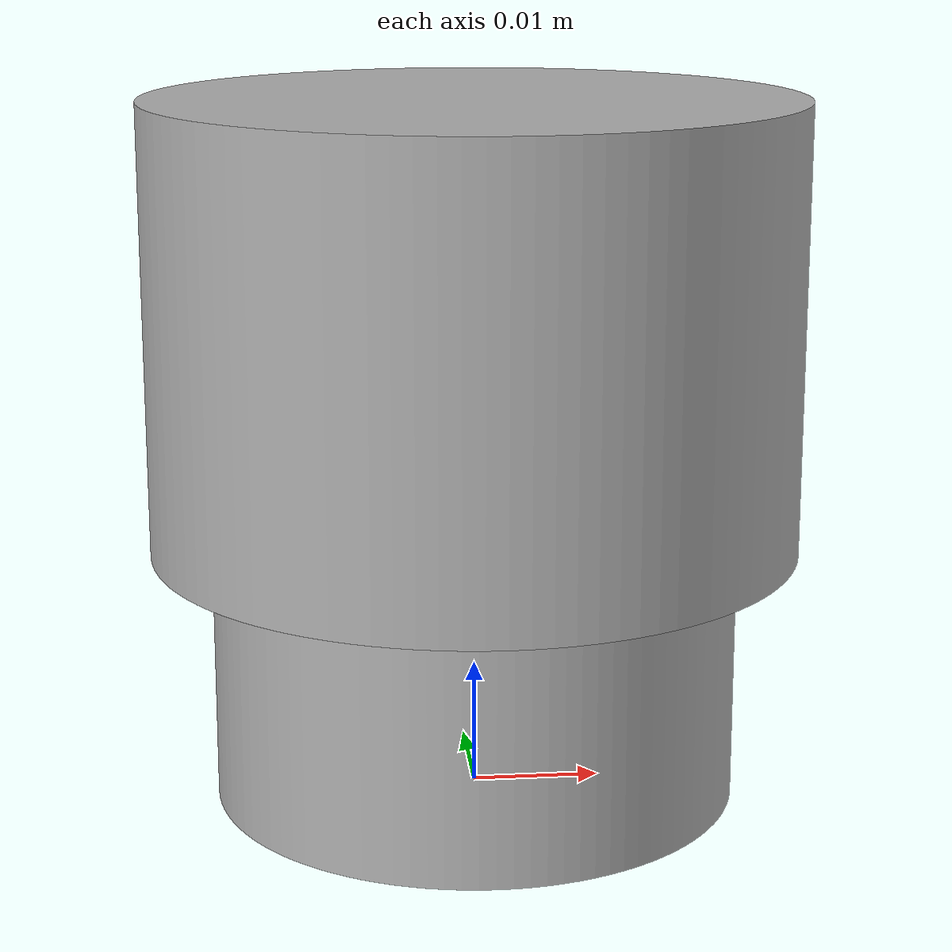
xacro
<?xml version="1.0" ?>
<robot name="Urdf_test" xmlns:xacro="http://www.ros.org/wiki/xacro">

<xacro:include filename="$(find Urdf_test_description)/urdf/materials.xacro" />
<xacro:include filename="$(find Urdf_test_description)/urdf/Urdf_test.trans" />
<xacro:include filename="$(find Urdf_test_description)/urdf/Urdf_test.gazebo" />
<link name="base_link">
  <inertial>
    <origin xyz="-2.660863465127029e-18 -5.321726930254058e-18 0.01" rpy="0 0 0"/>
    <mass value="0.2096221977872324"/>
    <inertia ixx="2.9e-05" iyy="2.9e-05" izz="4.5e-05" ixy="-0.0" iyz="-0.0" ixz="-0.0"/>
  </inertial>
  <visual>
    <origin xyz="0 0 0" rpy="0 0 0"/>
    <geometry>
      <mesh filename="file://$(find Urdf_test_description)/meshes/base_link.stl" scale="0.001 0.001 0.001"/>
    </geometry>
    <material name="silver"/>
  </visual>
  <collision>
    <origin xyz="0 0 0" rpy="0 0 0"/>
    <geometry>
      <mesh filename="file://$(find Urdf_test_description)/meshes/base_link.stl" scale="0.001 0.001 0.001"/>
    </geometry>
  </collision>
</link>

<link name="Component2_1">
  <inertial>
    <origin xyz="0.0 -8.881784197001253e-18 0.017499999999999998" rpy="0 0 0"/>
    <mass value="0.5547031509861376"/>
    <inertia ixx="0.000146" iyy="0.000146" izz="0.000178" ixy="-0.0" iyz="-0.0" ixz="-0.0"/>
  </inertial>
  <visual>
    <origin xyz="-0.0 -0.0 -0.02" rpy="0 0 0"/>
    <geometry>
      <mesh filename="file://$(find Urdf_test_description)/meshes/Component2_1.stl" scale="0.001 0.001 0.001"/>
    </geometry>
    <material name="silver"/>
  </visual>
  <collision>
    <origin xyz="-0.0 -0.0 -0.02" rpy="0 0 0"/>
    <geometry>
      <mesh filename="file://$(find Urdf_test_description)/meshes/Component2_1.stl" scale="0.001 0.001 0.001"/>
    </geometry>
  </collision>
</link>

<joint name="Revolute 1" type="continuous">
  <origin xyz="0.0 0.0 0.02" rpy="0 0 0"/>
  <parent link="base_link"/>
  <child link="Component2_1"/>
  <axis xyz="0.0 0.0 1.0"/>
</joint>

</robot>

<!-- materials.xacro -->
<robot name="Urdf_test" xmlns:xacro="http://www.ros.org/wiki/xacro" >

<material name="silver">
  <color rgba="0.700 0.700 0.700 1.000"/>
</material>

</robot>

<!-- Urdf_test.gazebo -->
<robot name="Urdf_test" xmlns:xacro="http://www.ros.org/wiki/xacro" >

<xacro:property name="body_color" value="Gazebo/Silver" />

<gazebo>
  <plugin name="control" filename="libgazebo_ros_control.so"/>
</gazebo>
<gazebo reference="base_link">
  <material>${body_color}</material>
  <mu1>0.2</mu1>
  <mu2>0.2</mu2>
  <self_collide>true</self_collide>
  <gravity>true</gravity>
</gazebo>

<gazebo reference="Component2_1">
  <material>${body_color}</material>
  <mu1>0.2</mu1>
  <mu2>0.2</mu2>
  <self_collide>true</self_collide>
</gazebo>

</robot>
